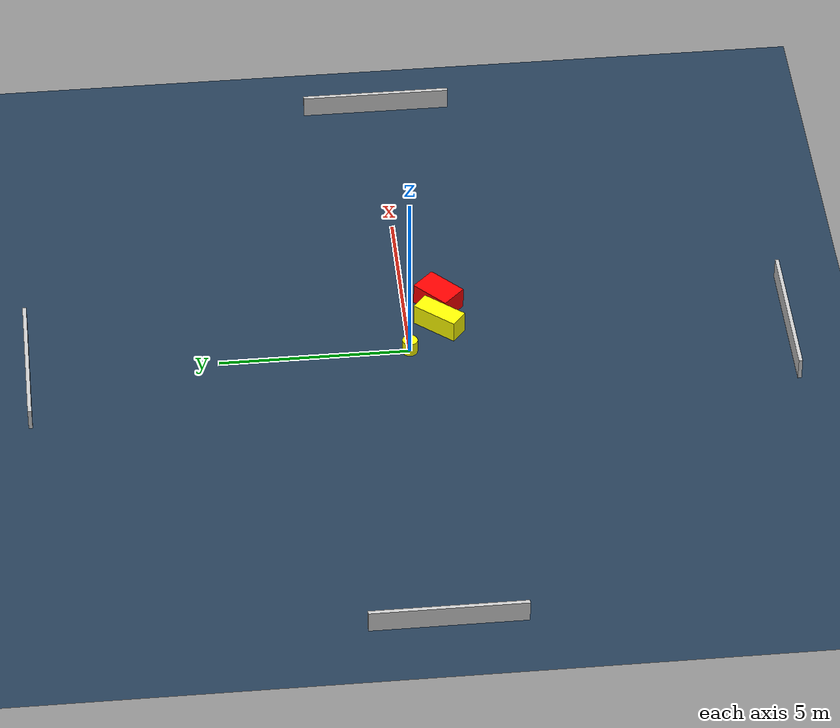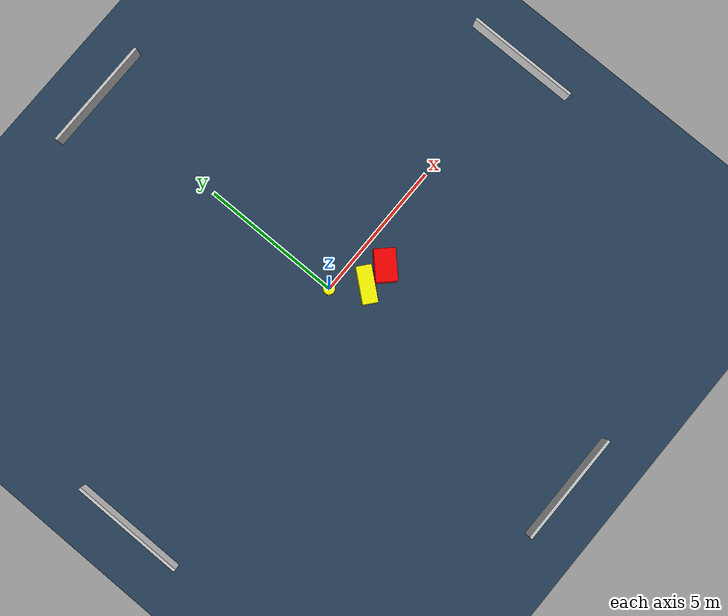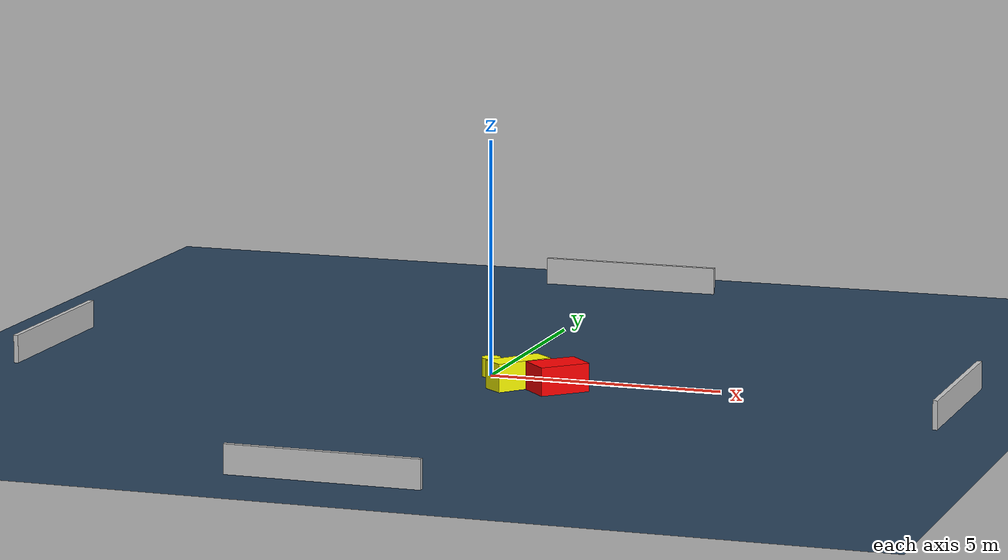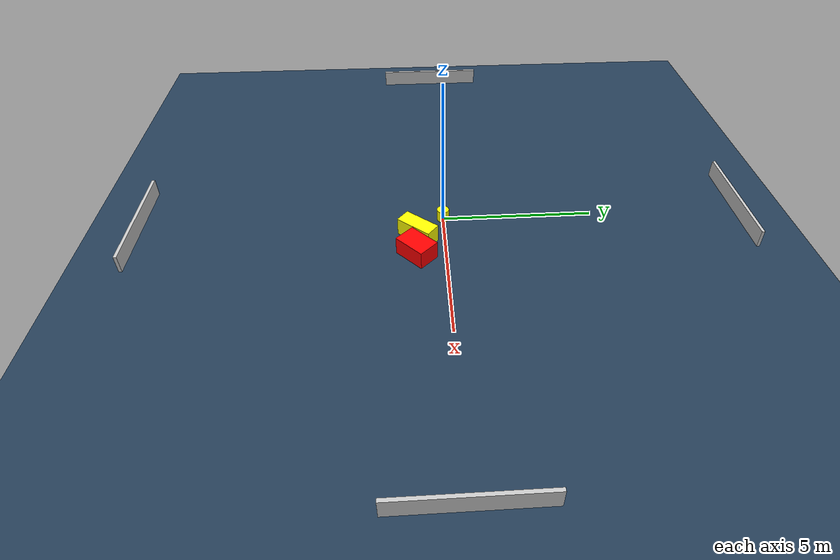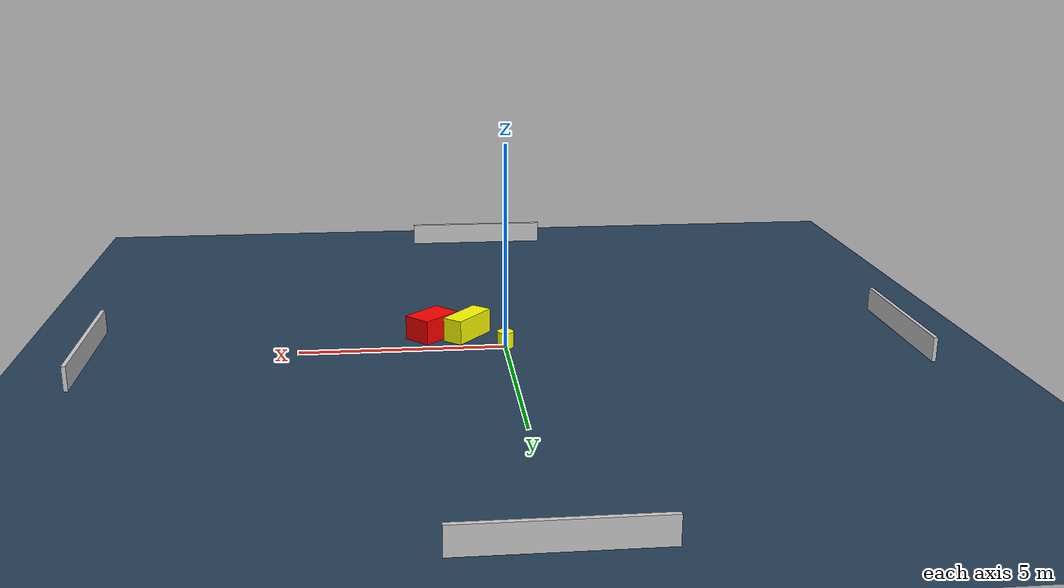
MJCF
<?xml version="1.0" ?>
<mujoco model="generated_environment">
  <option timestep="0.01" integrator="RK4" cone="elliptic"/>
  <default>
    <geom density="1"/>
  </default>
  <asset>
    <texture builtin="gradient" height="3072" name="skybox" rgb1="0.3 0.5 0.7" rgb2="0 0 0" type="skybox" width="512"/>
    <texture builtin="checker" height="300" name="groundplane" rgb1="0.2 0.3 0.4" rgb2="0.1 0.2 0.3" type="2d" width="300"/>
    <material name="groundplane" reflectance="0.2" texrepeat="5 5" texture="groundplane"/>
  </asset>
  <worldbody>
    <light dir="0 0 -1" directional="true" pos="0 0 1.5"/>
    <geom condim="3" friction="0.5 0.005 0.001" material="groundplane" name="floor" pos="0 0 0" size="0 0 0.05" type="plane"/>
    <body name="walls">
      <geom name="wall_1" condim="4" pos="-10.0 0.0 0.3" rgba="0.800000011920929 0.800000011920929 0.800000011920929 1.0" size="0.05 2.0 0.3" type="box"/>
      <geom name="wall_2" condim="4" pos="10.0 0.0 0.3" rgba="0.800000011920929 0.800000011920929 0.800000011920929 1.0" size="0.05 2.0 0.3" type="box"/>
      <geom name="wall_3" condim="4" pos="0.0 -10.0 0.3" rgba="0.800000011920929 0.800000011920929 0.800000011920929 1.0" size="2.0 0.05 0.3" type="box"/>
      <geom name="wall_4" condim="4" pos="0.0 10.0 0.3" rgba="0.800000011920929 0.800000011920929 0.800000011920929 1.0" size="2.0 0.05 0.3" type="box"/>
    </body>
    <body name="robot">
      <joint name="joint_x" type="slide" pos="0 0 0" axis="1 0 0"/>
      <joint name="joint_y" type="slide" pos="0 0 0" axis="0 1 0"/>
      <geom name="robot" type="cylinder" pos="0.0 0.0 0.2" size="0.2 0.2 0.0" mass="5.0" friction="1.0 0.005 0.0001" condim="4" rgba="1.0 1.0 0.0 1.0"/>
    </body>
    <body name="obstacle_1_movable">
      <geom name="obstacle_1_movable" condim="4" pos="0.8838474743071831 -0.8637451534747147 0.3" euler="0 0 230.20764637538326" friction="0.0 0.005 0.001" rgba="1.0 1.0 0.0 1.0" size="0.6301666402440993 0.26177291462032265 0.3" type="box" mass="0.1"/>
      <joint type="free"/>
    </body>
    <body name="obstacle_2_static">
      <geom name="obstacle_2_static" condim="4" pos="1.7629730159864558 -0.9255885828820303 0.3" euler="0 0 313.98404521062434" friction="0.0 0.005 0.001" rgba="1.0 0.0 0.0 1.0" size="0.36664115794044405 0.5489821029392348 0.3" type="box"/>
    </body>
  </worldbody>
  <actuator>
    <motor name="actuator_x" joint="joint_x" gear="1" ctrlrange="-1 1"/>
    <motor name="actuator_y" joint="joint_y" gear="1" ctrlrange="-1 1"/>
  </actuator>
</mujoco>
